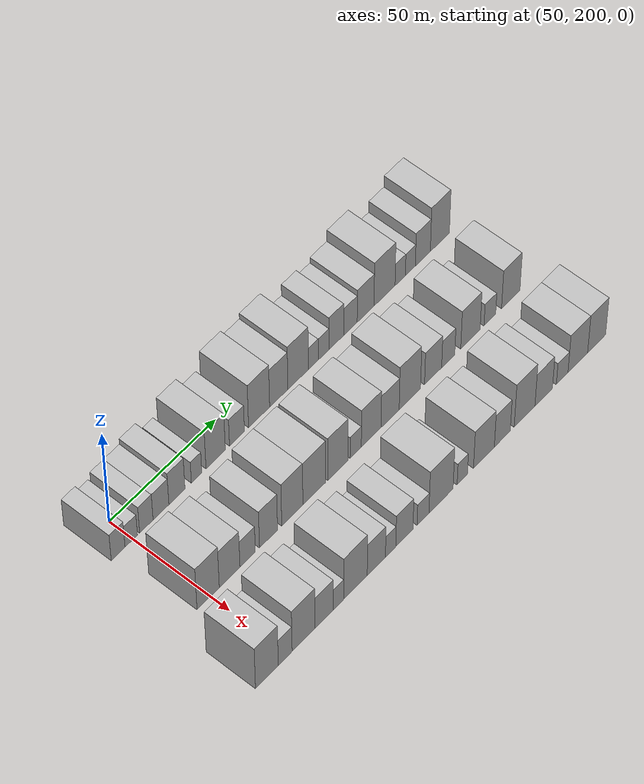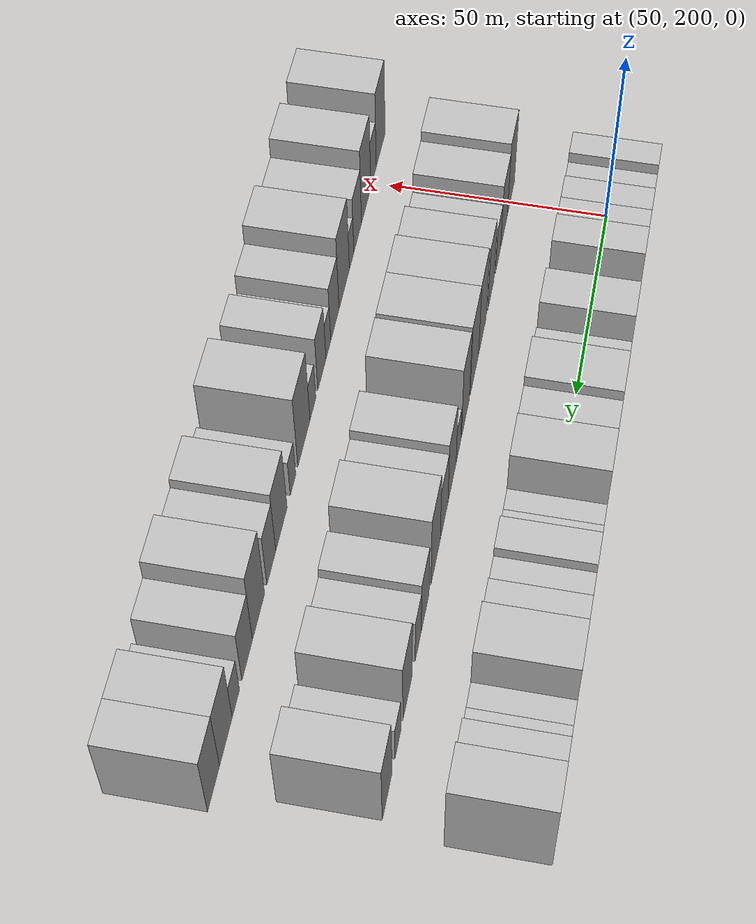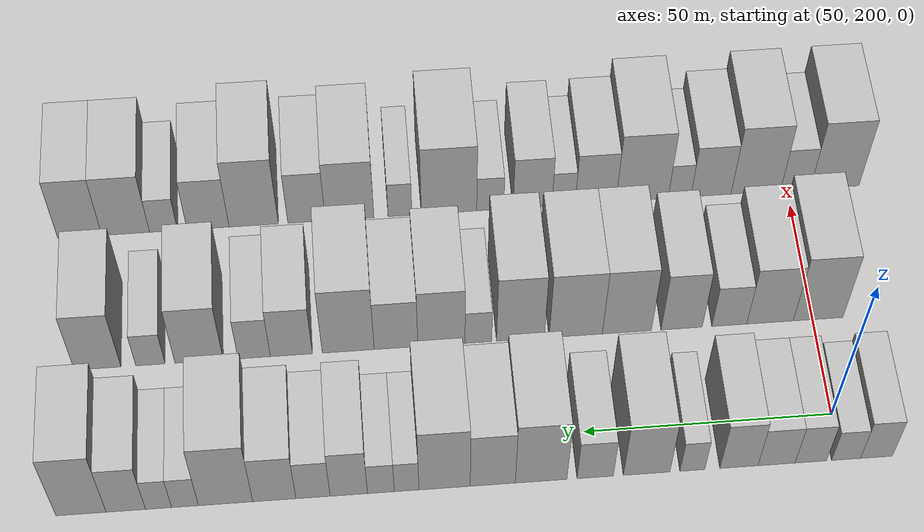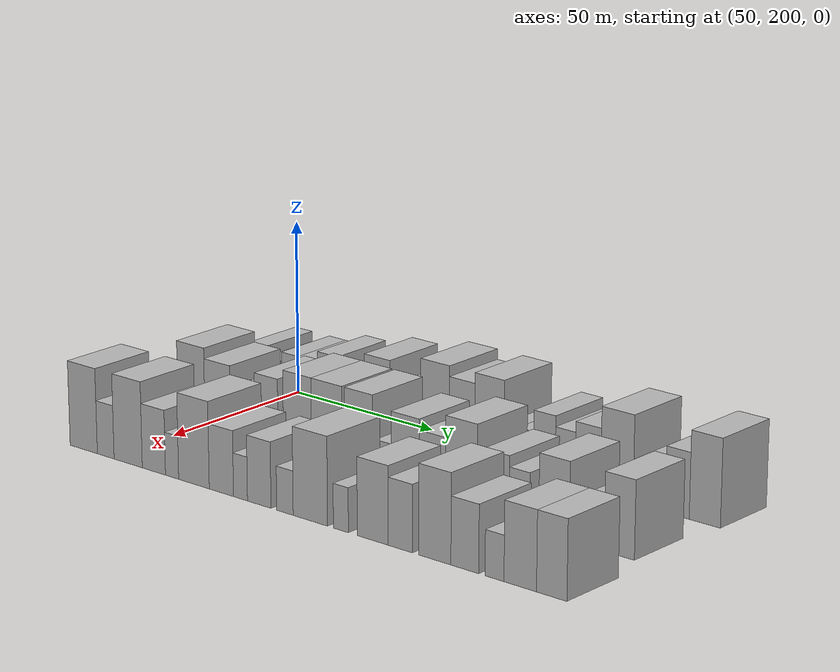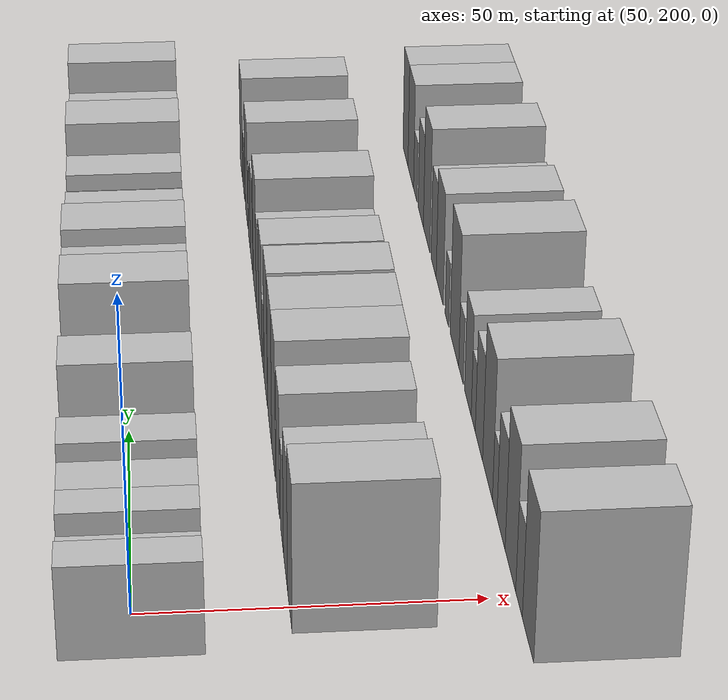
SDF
<sdf version="1.6">
 <world name="default">
  <model name="building_59">
   <static>1</static>
   <pose>50.0000 192.8500 0 0.000000 0.000000 0.000000</pose>
   <link name="link">
    <pose>0 0 7.50 0 0 0</pose>
    <collision name="collision"><geometry><box><size>20.0000 6.3850 15.0000</size></box></geometry></collision>
    <visual name="visual">
     <cast_shadows>0</cast_shadows>
     <geometry><box><size>20.0000 6.3850 15.0000</size></box></geometry>
     <material>
      <script>
       <uri>model://HANNAS_wall/materials/scripts</uri>
       <uri>model://HANNAS_wall/materials/textures</uri>
       <name>vrc/HANNAS_wall</name>
      </script>
     </material>
    </visual>
   </link>
  </model>
  <model name="building_60">
   <static>1</static>
   <pose>50.0000 198.9338 0 0.000000 0.000000 0.000000</pose>
   <link name="link">
    <pose>0 0 6.00 0 0 0</pose>
    <collision name="collision"><geometry><box><size>20.0000 5.7826 12.0000</size></box></geometry></collision>
    <visual name="visual">
     <cast_shadows>0</cast_shadows>
     <geometry><box><size>20.0000 5.7826 12.0000</size></box></geometry>
     <material>
      <script>
       <uri>model://HANNAS_wall/materials/scripts</uri>
       <uri>model://HANNAS_wall/materials/textures</uri>
       <name>vrc/HANNAS_wall</name>
      </script>
     </material>
    </visual>
   </link>
  </model>
  <model name="building_61">
   <static>1</static>
   <pose>50.0000 205.9676 0 0.000000 0.000000 0.000000</pose>
   <link name="link">
    <pose>0 0 7.50 0 0 0</pose>
    <collision name="collision"><geometry><box><size>20.0000 6.2850 15.0000</size></box></geometry></collision>
    <visual name="visual">
     <cast_shadows>0</cast_shadows>
     <geometry><box><size>20.0000 6.2850 15.0000</size></box></geometry>
     <material>
      <script>
       <uri>model://HANNAS_wall/materials/scripts</uri>
       <uri>model://HANNAS_wall/materials/textures</uri>
       <name>vrc/HANNAS_wall</name>
      </script>
     </material>
    </visual>
   </link>
  </model>
  <model name="building_62">
   <static>1</static>
   <pose>50.0000 212.8217 0 0.000000 0.000000 0.000000</pose>
   <link name="link">
    <pose>0 0 7.50 0 0 0</pose>
    <collision name="collision"><geometry><box><size>20.0000 7.4231 15.0000</size></box></geometry></collision>
    <visual name="visual">
     <cast_shadows>0</cast_shadows>
     <geometry><box><size>20.0000 7.4231 15.0000</size></box></geometry>
     <material>
      <script>
       <uri>model://HANNAS_wall/materials/scripts</uri>
       <uri>model://HANNAS_wall/materials/textures</uri>
       <name>vrc/HANNAS_wall</name>
      </script>
     </material>
    </visual>
   </link>
  </model>
  <model name="building_63">
   <static>1</static>
   <pose>50.0000 220.3268 0 0.000000 0.000000 0.000000</pose>
   <link name="link">
    <pose>0 0 9.00 0 0 0</pose>
    <collision name="collision"><geometry><box><size>20.0000 7.5871 18.0000</size></box></geometry></collision>
    <visual name="visual">
     <cast_shadows>0</cast_shadows>
     <geometry><box><size>20.0000 7.5871 18.0000</size></box></geometry>
     <material>
      <script>
       <uri>model://HANNAS_wall/materials/scripts</uri>
       <uri>model://HANNAS_wall/materials/textures</uri>
       <name>vrc/HANNAS_wall</name>
      </script>
     </material>
    </visual>
   </link>
  </model>
  <model name="building_64">
   <static>1</static>
   <pose>50.0000 229.5875 0 0.000000 0.000000 0.000000</pose>
   <link name="link">
    <pose>0 0 6.00 0 0 0</pose>
    <collision name="collision"><geometry><box><size>20.0000 4.9344 12.0000</size></box></geometry></collision>
    <visual name="visual">
     <cast_shadows>0</cast_shadows>
     <geometry><box><size>20.0000 4.9344 12.0000</size></box></geometry>
     <material>
      <script>
       <uri>model://HANNAS_wall/materials/scripts</uri>
       <uri>model://HANNAS_wall/materials/textures</uri>
       <name>vrc/HANNAS_wall</name>
      </script>
     </material>
    </visual>
   </link>
  </model>
  <model name="building_65">
   <static>1</static>
   <pose>50.0000 238.6654 0 0.000000 0.000000 0.000000</pose>
   <link name="link">
    <pose>0 0 10.50 0 0 0</pose>
    <collision name="collision"><geometry><box><size>20.0000 9.2213 21.0000</size></box></geometry></collision>
    <visual name="visual">
     <cast_shadows>0</cast_shadows>
     <geometry><box><size>20.0000 9.2213 21.0000</size></box></geometry>
     <material>
      <script>
       <uri>model://HANNAS_wall/materials/scripts</uri>
       <uri>model://HANNAS_wall/materials/textures</uri>
       <name>vrc/HANNAS_wall</name>
      </script>
     </material>
    </visual>
   </link>
  </model>
  <model name="building_66">
   <static>1</static>
   <pose>50.0000 248.8577 0 0.000000 0.000000 0.000000</pose>
   <link name="link">
    <pose>0 0 7.50 0 0 0</pose>
    <collision name="collision"><geometry><box><size>20.0000 7.1634 15.0000</size></box></geometry></collision>
    <visual name="visual">
     <cast_shadows>0</cast_shadows>
     <geometry><box><size>20.0000 7.1634 15.0000</size></box></geometry>
     <material>
      <script>
       <uri>model://HANNAS_wall/materials/scripts</uri>
       <uri>model://HANNAS_wall/materials/textures</uri>
       <name>vrc/HANNAS_wall</name>
      </script>
     </material>
    </visual>
   </link>
  </model>
  <model name="building_67">
   <static>1</static>
   <pose>50.0000 259.5342 0 0.000000 0.000000 0.000000</pose>
   <link name="link">
    <pose>0 0 12.00 0 0 0</pose>
    <collision name="collision"><geometry><box><size>20.0000 10.1897 24.0000</size></box></geometry></collision>
    <visual name="visual">
     <cast_shadows>0</cast_shadows>
     <geometry><box><size>20.0000 10.1897 24.0000</size></box></geometry>
     <material>
      <script>
       <uri>model://HANNAS_wall/materials/scripts</uri>
       <uri>model://HANNAS_wall/materials/textures</uri>
       <name>vrc/HANNAS_wall</name>
      </script>
     </material>
    </visual>
   </link>
  </model>
  <model name="building_68">
   <static>1</static>
   <pose>50.0000 269.0666 0 0.000000 0.000000 0.000000</pose>
   <link name="link">
    <pose>0 0 10.50 0 0 0</pose>
    <collision name="collision"><geometry><box><size>20.0000 8.8751 21.0000</size></box></geometry></collision>
    <visual name="visual">
     <cast_shadows>0</cast_shadows>
     <geometry><box><size>20.0000 8.8751 21.0000</size></box></geometry>
     <material>
      <script>
       <uri>model://HANNAS_wall/materials/scripts</uri>
       <uri>model://HANNAS_wall/materials/textures</uri>
       <name>vrc/HANNAS_wall</name>
      </script>
     </material>
    </visual>
   </link>
  </model>
  <model name="building_69">
   <static>1</static>
   <pose>50.0000 278.5439 0 0.000000 0.000000 0.000000</pose>
   <link name="link">
    <pose>0 0 12.00 0 0 0</pose>
    <collision name="collision"><geometry><box><size>20.0000 10.0796 24.0000</size></box></geometry></collision>
    <visual name="visual">
     <cast_shadows>0</cast_shadows>
     <geometry><box><size>20.0000 10.0796 24.0000</size></box></geometry>
     <material>
      <script>
       <uri>model://HANNAS_wall/materials/scripts</uri>
       <uri>model://HANNAS_wall/materials/textures</uri>
       <name>vrc/HANNAS_wall</name>
      </script>
     </material>
    </visual>
   </link>
  </model>
  <model name="building_70">
   <static>1</static>
   <pose>50.0000 286.0088 0 0.000000 0.000000 0.000000</pose>
   <link name="link">
    <pose>0 0 6.00 0 0 0</pose>
    <collision name="collision"><geometry><box><size>20.0000 4.8501 12.0000</size></box></geometry></collision>
    <visual name="visual">
     <cast_shadows>0</cast_shadows>
     <geometry><box><size>20.0000 4.8501 12.0000</size></box></geometry>
     <material>
      <script>
       <uri>model://HANNAS_wall/materials/scripts</uri>
       <uri>model://HANNAS_wall/materials/textures</uri>
       <name>vrc/HANNAS_wall</name>
      </script>
     </material>
    </visual>
   </link>
  </model>
  <model name="building_71">
   <static>1</static>
   <pose>50.0000 291.0631 0 0.000000 0.000000 0.000000</pose>
   <link name="link">
    <pose>0 0 6.00 0 0 0</pose>
    <collision name="collision"><geometry><box><size>20.0000 5.2586 12.0000</size></box></geometry></collision>
    <visual name="visual">
     <cast_shadows>0</cast_shadows>
     <geometry><box><size>20.0000 5.2586 12.0000</size></box></geometry>
     <material>
      <script>
       <uri>model://HANNAS_wall/materials/scripts</uri>
       <uri>model://HANNAS_wall/materials/textures</uri>
       <name>vrc/HANNAS_wall</name>
      </script>
     </material>
    </visual>
   </link>
  </model>
  <model name="building_72">
   <static>1</static>
   <pose>50.0000 297.3465 0 0.000000 0.000000 0.000000</pose>
   <link name="link">
    <pose>0 0 9.00 0 0 0</pose>
    <collision name="collision"><geometry><box><size>20.0000 7.3082 18.0000</size></box></geometry></collision>
    <visual name="visual">
     <cast_shadows>0</cast_shadows>
     <geometry><box><size>20.0000 7.3082 18.0000</size></box></geometry>
     <material>
      <script>
       <uri>model://HANNAS_wall/materials/scripts</uri>
       <uri>model://HANNAS_wall/materials/textures</uri>
       <name>vrc/HANNAS_wall</name>
      </script>
     </material>
    </visual>
   </link>
  </model>
  <model name="building_73">
   <static>1</static>
   <pose>50.0000 304.3476 0 0.000000 0.000000 0.000000</pose>
   <link name="link">
    <pose>0 0 7.50 0 0 0</pose>
    <collision name="collision"><geometry><box><size>20.0000 6.6939 15.0000</size></box></geometry></collision>
    <visual name="visual">
     <cast_shadows>0</cast_shadows>
     <geometry><box><size>20.0000 6.6939 15.0000</size></box></geometry>
     <material>
      <script>
       <uri>model://HANNAS_wall/materials/scripts</uri>
       <uri>model://HANNAS_wall/materials/textures</uri>
       <name>vrc/HANNAS_wall</name>
      </script>
     </material>
    </visual>
   </link>
  </model>
  <model name="building_74">
   <static>1</static>
   <pose>50.0000 311.9067 0 0.000000 0.000000 0.000000</pose>
   <link name="link">
    <pose>0 0 9.00 0 0 0</pose>
    <collision name="collision"><geometry><box><size>20.0000 8.4244 18.0000</size></box></geometry></collision>
    <visual name="visual">
     <cast_shadows>0</cast_shadows>
     <geometry><box><size>20.0000 8.4244 18.0000</size></box></geometry>
     <material>
      <script>
       <uri>model://HANNAS_wall/materials/scripts</uri>
       <uri>model://HANNAS_wall/materials/textures</uri>
       <name>vrc/HANNAS_wall</name>
      </script>
     </material>
    </visual>
   </link>
  </model>
  <model name="building_75">
   <static>1</static>
   <pose>50.0000 321.4114 0 0.000000 0.000000 0.000000</pose>
   <link name="link">
    <pose>0 0 12.00 0 0 0</pose>
    <collision name="collision"><geometry><box><size>20.0000 10.5850 24.0000</size></box></geometry></collision>
    <visual name="visual">
     <cast_shadows>0</cast_shadows>
     <geometry><box><size>20.0000 10.5850 24.0000</size></box></geometry>
     <material>
      <script>
       <uri>model://HANNAS_wall/materials/scripts</uri>
       <uri>model://HANNAS_wall/materials/textures</uri>
       <name>vrc/HANNAS_wall</name>
      </script>
     </material>
    </visual>
   </link>
  </model>
  <model name="building_76">
   <static>1</static>
   <pose>50.0000 329.3236 0 0.000000 0.000000 0.000000</pose>
   <link name="link">
    <pose>0 0 6.00 0 0 0</pose>
    <collision name="collision"><geometry><box><size>20.0000 5.2394 12.0000</size></box></geometry></collision>
    <visual name="visual">
     <cast_shadows>0</cast_shadows>
     <geometry><box><size>20.0000 5.2394 12.0000</size></box></geometry>
     <material>
      <script>
       <uri>model://HANNAS_wall/materials/scripts</uri>
       <uri>model://HANNAS_wall/materials/textures</uri>
       <name>vrc/HANNAS_wall</name>
      </script>
     </material>
    </visual>
   </link>
  </model>
  <model name="building_77">
   <static>1</static>
   <pose>50.0000 334.4714 0 0.000000 0.000000 0.000000</pose>
   <link name="link">
    <pose>0 0 6.00 0 0 0</pose>
    <collision name="collision"><geometry><box><size>20.0000 5.0562 12.0000</size></box></geometry></collision>
    <visual name="visual">
     <cast_shadows>0</cast_shadows>
     <geometry><box><size>20.0000 5.0562 12.0000</size></box></geometry>
     <material>
      <script>
       <uri>model://HANNAS_wall/materials/scripts</uri>
       <uri>model://HANNAS_wall/materials/textures</uri>
       <name>vrc/HANNAS_wall</name>
      </script>
     </material>
    </visual>
   </link>
  </model>
  <model name="building_78">
   <static>1</static>
   <pose>50.0000 340.8125 0 0.000000 0.000000 0.000000</pose>
   <link name="link">
    <pose>0 0 9.00 0 0 0</pose>
    <collision name="collision"><geometry><box><size>20.0000 7.6260 18.0000</size></box></geometry></collision>
    <visual name="visual">
     <cast_shadows>0</cast_shadows>
     <geometry><box><size>20.0000 7.6260 18.0000</size></box></geometry>
     <material>
      <script>
       <uri>model://HANNAS_wall/materials/scripts</uri>
       <uri>model://HANNAS_wall/materials/textures</uri>
       <name>vrc/HANNAS_wall</name>
      </script>
     </material>
    </visual>
   </link>
  </model>
  <model name="building_79">
   <static>1</static>
   <pose>50.0000 349.4919 0 0.000000 0.000000 0.000000</pose>
   <link name="link">
    <pose>0 0 12.00 0 0 0</pose>
    <collision name="collision"><geometry><box><size>20.0000 9.7329 24.0000</size></box></geometry></collision>
    <visual name="visual">
     <cast_shadows>0</cast_shadows>
     <geometry><box><size>20.0000 9.7329 24.0000</size></box></geometry>
     <material>
      <script>
       <uri>model://HANNAS_wall/materials/scripts</uri>
       <uri>model://HANNAS_wall/materials/textures</uri>
       <name>vrc/HANNAS_wall</name>
      </script>
     </material>
    </visual>
   </link>
  </model>
  <model name="building_136">
   <static>1</static>
   <pose>82.0000 198.8941 0 0.000000 0.000000 0.000000</pose>
   <link name="link">
    <pose>0 0 12.00 0 0 0</pose>
    <collision name="collision"><geometry><box><size>20.0000 10.3690 24.0000</size></box></geometry></collision>
    <visual name="visual">
     <cast_shadows>0</cast_shadows>
     <geometry><box><size>20.0000 10.3690 24.0000</size></box></geometry>
     <material>
      <script>
       <uri>model://HANNAS_wall/materials/scripts</uri>
       <uri>model://HANNAS_wall/materials/textures</uri>
       <name>vrc/HANNAS_wall</name>
      </script>
     </material>
    </visual>
   </link>
  </model>
  <model name="building_137">
   <static>1</static>
   <pose>82.0000 208.9224 0 0.000000 0.000000 0.000000</pose>
   <link name="link">
    <pose>0 0 10.50 0 0 0</pose>
    <collision name="collision"><geometry><box><size>20.0000 9.6878 21.0000</size></box></geometry></collision>
    <visual name="visual">
     <cast_shadows>0</cast_shadows>
     <geometry><box><size>20.0000 9.6878 21.0000</size></box></geometry>
     <material>
      <script>
       <uri>model://HANNAS_wall/materials/scripts</uri>
       <uri>model://HANNAS_wall/materials/textures</uri>
       <name>vrc/HANNAS_wall</name>
      </script>
     </material>
    </visual>
   </link>
  </model>
  <model name="building_138">
   <static>1</static>
   <pose>82.0000 217.3821 0 0.000000 0.000000 0.000000</pose>
   <link name="link">
    <pose>0 0 7.50 0 0 0</pose>
    <collision name="collision"><geometry><box><size>20.0000 7.2315 15.0000</size></box></geometry></collision>
    <visual name="visual">
     <cast_shadows>0</cast_shadows>
     <geometry><box><size>20.0000 7.2315 15.0000</size></box></geometry>
     <material>
      <script>
       <uri>model://HANNAS_wall/materials/scripts</uri>
       <uri>model://HANNAS_wall/materials/textures</uri>
       <name>vrc/HANNAS_wall</name>
      </script>
     </material>
    </visual>
   </link>
  </model>
  <model name="building_139">
   <static>1</static>
   <pose>82.0000 227.2700 0 0.000000 0.000000 0.000000</pose>
   <link name="link">
    <pose>0 0 10.50 0 0 0</pose>
    <collision name="collision"><geometry><box><size>20.0000 8.5444 21.0000</size></box></geometry></collision>
    <visual name="visual">
     <cast_shadows>0</cast_shadows>
     <geometry><box><size>20.0000 8.5444 21.0000</size></box></geometry>
     <material>
      <script>
       <uri>model://HANNAS_wall/materials/scripts</uri>
       <uri>model://HANNAS_wall/materials/textures</uri>
       <name>vrc/HANNAS_wall</name>
      </script>
     </material>
    </visual>
   </link>
  </model>
  <model name="building_140">
   <static>1</static>
   <pose>82.0000 238.6148 0 0.000000 0.000000 0.000000</pose>
   <link name="link">
    <pose>0 0 12.00 0 0 0</pose>
    <collision name="collision"><geometry><box><size>20.0000 10.1452 24.0000</size></box></geometry></collision>
    <visual name="visual">
     <cast_shadows>0</cast_shadows>
     <geometry><box><size>20.0000 10.1452 24.0000</size></box></geometry>
     <material>
      <script>
       <uri>model://HANNAS_wall/materials/scripts</uri>
       <uri>model://HANNAS_wall/materials/textures</uri>
       <name>vrc/HANNAS_wall</name>
      </script>
     </material>
    </visual>
   </link>
  </model>
  <model name="building_141">
   <static>1</static>
   <pose>82.0000 249.1798 0 0.000000 0.000000 0.000000</pose>
   <link name="link">
    <pose>0 0 12.00 0 0 0</pose>
    <collision name="collision"><geometry><box><size>20.0000 10.9849 24.0000</size></box></geometry></collision>
    <visual name="visual">
     <cast_shadows>0</cast_shadows>
     <geometry><box><size>20.0000 10.9849 24.0000</size></box></geometry>
     <material>
      <script>
       <uri>model://HANNAS_wall/materials/scripts</uri>
       <uri>model://HANNAS_wall/materials/textures</uri>
       <name>vrc/HANNAS_wall</name>
      </script>
     </material>
    </visual>
   </link>
  </model>
  <model name="building_142">
   <static>1</static>
   <pose>82.0000 260.5869 0 0.000000 0.000000 0.000000</pose>
   <link name="link">
    <pose>0 0 12.00 0 0 0</pose>
    <collision name="collision"><geometry><box><size>20.0000 9.8292 24.0000</size></box></geometry></collision>
    <visual name="visual">
     <cast_shadows>0</cast_shadows>
     <geometry><box><size>20.0000 9.8292 24.0000</size></box></geometry>
     <material>
      <script>
       <uri>model://HANNAS_wall/materials/scripts</uri>
       <uri>model://HANNAS_wall/materials/textures</uri>
       <name>vrc/HANNAS_wall</name>
      </script>
     </material>
    </visual>
   </link>
  </model>
  <model name="building_143">
   <static>1</static>
   <pose>82.0000 269.2338 0 0.000000 0.000000 0.000000</pose>
   <link name="link">
    <pose>0 0 6.00 0 0 0</pose>
    <collision name="collision"><geometry><box><size>20.0000 5.4647 12.0000</size></box></geometry></collision>
    <visual name="visual">
     <cast_shadows>0</cast_shadows>
     <geometry><box><size>20.0000 5.4647 12.0000</size></box></geometry>
     <material>
      <script>
       <uri>model://HANNAS_wall/materials/scripts</uri>
       <uri>model://HANNAS_wall/materials/textures</uri>
       <name>vrc/HANNAS_wall</name>
      </script>
     </material>
    </visual>
   </link>
  </model>
  <model name="building_144">
   <static>1</static>
   <pose>82.0000 276.8035 0 0.000000 0.000000 0.000000</pose>
   <link name="link">
    <pose>0 0 10.50 0 0 0</pose>
    <collision name="collision"><geometry><box><size>20.0000 9.6748 21.0000</size></box></geometry></collision>
    <visual name="visual">
     <cast_shadows>0</cast_shadows>
     <geometry><box><size>20.0000 9.6748 21.0000</size></box></geometry>
     <material>
      <script>
       <uri>model://HANNAS_wall/materials/scripts</uri>
       <uri>model://HANNAS_wall/materials/textures</uri>
       <name>vrc/HANNAS_wall</name>
      </script>
     </material>
    </visual>
   </link>
  </model>
  <model name="building_145">
   <static>1</static>
   <pose>82.0000 286.1169 0 0.000000 0.000000 0.000000</pose>
   <link name="link">
    <pose>0 0 9.00 0 0 0</pose>
    <collision name="collision"><geometry><box><size>20.0000 8.9520 18.0000</size></box></geometry></collision>
    <visual name="visual">
     <cast_shadows>0</cast_shadows>
     <geometry><box><size>20.0000 8.9520 18.0000</size></box></geometry>
     <material>
      <script>
       <uri>model://HANNAS_wall/materials/scripts</uri>
       <uri>model://HANNAS_wall/materials/textures</uri>
       <name>vrc/HANNAS_wall</name>
      </script>
     </material>
    </visual>
   </link>
  </model>
  <model name="building_146">
   <static>1</static>
   <pose>82.0000 295.9011 0 0.000000 0.000000 0.000000</pose>
   <link name="link">
    <pose>0 0 12.00 0 0 0</pose>
    <collision name="collision"><geometry><box><size>20.0000 10.6165 24.0000</size></box></geometry></collision>
    <visual name="visual">
     <cast_shadows>0</cast_shadows>
     <geometry><box><size>20.0000 10.6165 24.0000</size></box></geometry>
     <material>
      <script>
       <uri>model://HANNAS_wall/materials/scripts</uri>
       <uri>model://HANNAS_wall/materials/textures</uri>
       <name>vrc/HANNAS_wall</name>
      </script>
     </material>
    </visual>
   </link>
  </model>
  <model name="building_147">
   <static>1</static>
   <pose>82.0000 307.4926 0 0.000000 0.000000 0.000000</pose>
   <link name="link">
    <pose>0 0 9.00 0 0 0</pose>
    <collision name="collision"><geometry><box><size>20.0000 8.5664 18.0000</size></box></geometry></collision>
    <visual name="visual">
     <cast_shadows>0</cast_shadows>
     <geometry><box><size>20.0000 8.5664 18.0000</size></box></geometry>
     <material>
      <script>
       <uri>model://HANNAS_wall/materials/scripts</uri>
       <uri>model://HANNAS_wall/materials/textures</uri>
       <name>vrc/HANNAS_wall</name>
      </script>
     </material>
    </visual>
   </link>
  </model>
  <model name="building_148">
   <static>1</static>
   <pose>82.0000 315.0763 0 0.000000 0.000000 0.000000</pose>
   <link name="link">
    <pose>0 0 7.50 0 0 0</pose>
    <collision name="collision"><geometry><box><size>20.0000 6.6009 15.0000</size></box></geometry></collision>
    <visual name="visual">
     <cast_shadows>0</cast_shadows>
     <geometry><box><size>20.0000 6.6009 15.0000</size></box></geometry>
     <material>
      <script>
       <uri>model://HANNAS_wall/materials/scripts</uri>
       <uri>model://HANNAS_wall/materials/textures</uri>
       <name>vrc/HANNAS_wall</name>
      </script>
     </material>
    </visual>
   </link>
  </model>
  <model name="building_149">
   <static>1</static>
   <pose>82.0000 326.2870 0 0.000000 0.000000 0.000000</pose>
   <link name="link">
    <pose>0 0 10.50 0 0 0</pose>
    <collision name="collision"><geometry><box><size>20.0000 9.8205 21.0000</size></box></geometry></collision>
    <visual name="visual">
     <cast_shadows>0</cast_shadows>
     <geometry><box><size>20.0000 9.8205 21.0000</size></box></geometry>
     <material>
      <script>
       <uri>model://HANNAS_wall/materials/scripts</uri>
       <uri>model://HANNAS_wall/materials/textures</uri>
       <name>vrc/HANNAS_wall</name>
      </script>
     </material>
    </visual>
   </link>
  </model>
  <model name="building_150">
   <static>1</static>
   <pose>82.0000 336.1662 0 0.000000 0.000000 0.000000</pose>
   <link name="link">
    <pose>0 0 6.00 0 0 0</pose>
    <collision name="collision"><geometry><box><size>20.0000 5.9378 12.0000</size></box></geometry></collision>
    <visual name="visual">
     <cast_shadows>0</cast_shadows>
     <geometry><box><size>20.0000 5.9378 12.0000</size></box></geometry>
     <material>
      <script>
       <uri>model://HANNAS_wall/materials/scripts</uri>
       <uri>model://HANNAS_wall/materials/textures</uri>
       <name>vrc/HANNAS_wall</name>
      </script>
     </material>
    </visual>
   </link>
  </model>
  <model name="building_151">
   <static>1</static>
   <pose>82.0000 346.8562 0 0.000000 0.000000 0.000000</pose>
   <link name="link">
    <pose>0 0 10.50 0 0 0</pose>
    <collision name="collision"><geometry><box><size>20.0000 9.4422 21.0000</size></box></geometry></collision>
    <visual name="visual">
     <cast_shadows>0</cast_shadows>
     <geometry><box><size>20.0000 9.4422 21.0000</size></box></geometry>
     <material>
      <script>
       <uri>model://HANNAS_wall/materials/scripts</uri>
       <uri>model://HANNAS_wall/materials/textures</uri>
       <name>vrc/HANNAS_wall</name>
      </script>
     </material>
    </visual>
   </link>
  </model>
  <model name="building_206">
   <static>1</static>
   <pose>114.0000 189.7043 0 0.000000 0.000000 0.000000</pose>
   <link name="link">
    <pose>0 0 12.00 0 0 0</pose>
    <collision name="collision"><geometry><box><size>20.0000 10.6008 24.0000</size></box></geometry></collision>
    <visual name="visual">
     <cast_shadows>0</cast_shadows>
     <geometry><box><size>20.0000 10.6008 24.0000</size></box></geometry>
     <material>
      <script>
       <uri>model://HANNAS_wall/materials/scripts</uri>
       <uri>model://HANNAS_wall/materials/textures</uri>
       <name>vrc/HANNAS_wall</name>
      </script>
     </material>
    </visual>
   </link>
  </model>
  <model name="building_207">
   <static>1</static>
   <pose>114.0000 198.2244 0 0.000000 0.000000 0.000000</pose>
   <link name="link">
    <pose>0 0 7.50 0 0 0</pose>
    <collision name="collision"><geometry><box><size>20.0000 6.4396 15.0000</size></box></geometry></collision>
    <visual name="visual">
     <cast_shadows>0</cast_shadows>
     <geometry><box><size>20.0000 6.4396 15.0000</size></box></geometry>
     <material>
      <script>
       <uri>model://HANNAS_wall/materials/scripts</uri>
       <uri>model://HANNAS_wall/materials/textures</uri>
       <name>vrc/HANNAS_wall</name>
      </script>
     </material>
    </visual>
   </link>
  </model>
  <model name="building_208">
   <static>1</static>
   <pose>114.0000 206.8115 0 0.000000 0.000000 0.000000</pose>
   <link name="link">
    <pose>0 0 12.00 0 0 0</pose>
    <collision name="collision"><geometry><box><size>20.0000 10.7345 24.0000</size></box></geometry></collision>
    <visual name="visual">
     <cast_shadows>0</cast_shadows>
     <geometry><box><size>20.0000 10.7345 24.0000</size></box></geometry>
     <material>
      <script>
       <uri>model://HANNAS_wall/materials/scripts</uri>
       <uri>model://HANNAS_wall/materials/textures</uri>
       <name>vrc/HANNAS_wall</name>
      </script>
     </material>
    </visual>
   </link>
  </model>
  <model name="building_209">
   <static>1</static>
   <pose>114.0000 216.5246 0 0.000000 0.000000 0.000000</pose>
   <link name="link">
    <pose>0 0 9.00 0 0 0</pose>
    <collision name="collision"><geometry><box><size>20.0000 8.6918 18.0000</size></box></geometry></collision>
    <visual name="visual">
     <cast_shadows>0</cast_shadows>
     <geometry><box><size>20.0000 8.6918 18.0000</size></box></geometry>
     <material>
      <script>
       <uri>model://HANNAS_wall/materials/scripts</uri>
       <uri>model://HANNAS_wall/materials/textures</uri>
       <name>vrc/HANNAS_wall</name>
      </script>
     </material>
    </visual>
   </link>
  </model>
  <model name="building_210">
   <static>1</static>
   <pose>114.0000 223.3165 0 0.000000 0.000000 0.000000</pose>
   <link name="link">
    <pose>0 0 6.00 0 0 0</pose>
    <collision name="collision"><geometry><box><size>20.0000 4.8919 12.0000</size></box></geometry></collision>
    <visual name="visual">
     <cast_shadows>0</cast_shadows>
     <geometry><box><size>20.0000 4.8919 12.0000</size></box></geometry>
     <material>
      <script>
       <uri>model://HANNAS_wall/materials/scripts</uri>
       <uri>model://HANNAS_wall/materials/textures</uri>
       <name>vrc/HANNAS_wall</name>
      </script>
     </material>
    </visual>
   </link>
  </model>
  <model name="building_211">
   <static>1</static>
   <pose>114.0000 231.3942 0 0.000000 0.000000 0.000000</pose>
   <link name="link">
    <pose>0 0 12.00 0 0 0</pose>
    <collision name="collision"><geometry><box><size>20.0000 11.2636 24.0000</size></box></geometry></collision>
    <visual name="visual">
     <cast_shadows>0</cast_shadows>
     <geometry><box><size>20.0000 11.2636 24.0000</size></box></geometry>
     <material>
      <script>
       <uri>model://HANNAS_wall/materials/scripts</uri>
       <uri>model://HANNAS_wall/materials/textures</uri>
       <name>vrc/HANNAS_wall</name>
      </script>
     </material>
    </visual>
   </link>
  </model>
  <model name="building_212">
   <static>1</static>
   <pose>114.0000 241.4114 0 0.000000 0.000000 0.000000</pose>
   <link name="link">
    <pose>0 0 9.00 0 0 0</pose>
    <collision name="collision"><geometry><box><size>20.0000 8.7707 18.0000</size></box></geometry></collision>
    <visual name="visual">
     <cast_shadows>0</cast_shadows>
     <geometry><box><size>20.0000 8.7707 18.0000</size></box></geometry>
     <material>
      <script>
       <uri>model://HANNAS_wall/materials/scripts</uri>
       <uri>model://HANNAS_wall/materials/textures</uri>
       <name>vrc/HANNAS_wall</name>
      </script>
     </material>
    </visual>
   </link>
  </model>
  <model name="building_213">
   <static>1</static>
   <pose>114.0000 248.2952 0 0.000000 0.000000 0.000000</pose>
   <link name="link">
    <pose>0 0 6.00 0 0 0</pose>
    <collision name="collision"><geometry><box><size>20.0000 4.9968 12.0000</size></box></geometry></collision>
    <visual name="visual">
     <cast_shadows>0</cast_shadows>
     <geometry><box><size>20.0000 4.9968 12.0000</size></box></geometry>
     <material>
      <script>
       <uri>model://HANNAS_wall/materials/scripts</uri>
       <uri>model://HANNAS_wall/materials/textures</uri>
       <name>vrc/HANNAS_wall</name>
      </script>
     </material>
    </visual>
   </link>
  </model>
  <model name="building_214">
   <static>1</static>
   <pose>114.0000 254.9642 0 0.000000 0.000000 0.000000</pose>
   <link name="link">
    <pose>0 0 9.00 0 0 0</pose>
    <collision name="collision"><geometry><box><size>20.0000 8.3412 18.0000</size></box></geometry></collision>
    <visual name="visual">
     <cast_shadows>0</cast_shadows>
     <geometry><box><size>20.0000 8.3412 18.0000</size></box></geometry>
     <material>
      <script>
       <uri>model://HANNAS_wall/materials/scripts</uri>
       <uri>model://HANNAS_wall/materials/textures</uri>
       <name>vrc/HANNAS_wall</name>
      </script>
     </material>
    </visual>
   </link>
  </model>
  <model name="building_215">
   <static>1</static>
   <pose>114.0000 264.0211 0 0.000000 0.000000 0.000000</pose>
   <link name="link">
    <pose>0 0 6.00 0 0 0</pose>
    <collision name="collision"><geometry><box><size>20.0000 5.7726 12.0000</size></box></geometry></collision>
    <visual name="visual">
     <cast_shadows>0</cast_shadows>
     <geometry><box><size>20.0000 5.7726 12.0000</size></box></geometry>
     <material>
      <script>
       <uri>model://HANNAS_wall/materials/scripts</uri>
       <uri>model://HANNAS_wall/materials/textures</uri>
       <name>vrc/HANNAS_wall</name>
      </script>
     </material>
    </visual>
   </link>
  </model>
  <model name="building_216">
   <static>1</static>
   <pose>114.0000 272.8344 0 0.000000 0.000000 0.000000</pose>
   <link name="link">
    <pose>0 0 12.00 0 0 0</pose>
    <collision name="collision"><geometry><box><size>20.0000 11.8541 24.0000</size></box></geometry></collision>
    <visual name="visual">
     <cast_shadows>0</cast_shadows>
     <geometry><box><size>20.0000 11.8541 24.0000</size></box></geometry>
     <material>
      <script>
       <uri>model://HANNAS_wall/materials/scripts</uri>
       <uri>model://HANNAS_wall/materials/textures</uri>
       <name>vrc/HANNAS_wall</name>
      </script>
     </material>
    </visual>
   </link>
  </model>
  <model name="building_217">
   <static>1</static>
   <pose>114.0000 283.3112 0 0.000000 0.000000 0.000000</pose>
   <link name="link">
    <pose>0 0 6.00 0 0 0</pose>
    <collision name="collision"><geometry><box><size>20.0000 5.0994 12.0000</size></box></geometry></collision>
    <visual name="visual">
     <cast_shadows>0</cast_shadows>
     <geometry><box><size>20.0000 5.0994 12.0000</size></box></geometry>
     <material>
      <script>
       <uri>model://HANNAS_wall/materials/scripts</uri>
       <uri>model://HANNAS_wall/materials/textures</uri>
       <name>vrc/HANNAS_wall</name>
      </script>
     </material>
    </visual>
   </link>
  </model>
  <model name="building_218">
   <static>1</static>
   <pose>114.0000 294.0499 0 0.000000 0.000000 0.000000</pose>
   <link name="link">
    <pose>0 0 10.50 0 0 0</pose>
    <collision name="collision"><geometry><box><size>20.0000 10.3780 21.0000</size></box></geometry></collision>
    <visual name="visual">
     <cast_shadows>0</cast_shadows>
     <geometry><box><size>20.0000 10.3780 21.0000</size></box></geometry>
     <material>
      <script>
       <uri>model://HANNAS_wall/materials/scripts</uri>
       <uri>model://HANNAS_wall/materials/textures</uri>
       <name>vrc/HANNAS_wall</name>
      </script>
     </material>
    </visual>
   </link>
  </model>
  <model name="building_219">
   <static>1</static>
   <pose>114.0000 303.2177 0 0.000000 0.000000 0.000000</pose>
   <link name="link">
    <pose>0 0 9.00 0 0 0</pose>
    <collision name="collision"><geometry><box><size>20.0000 7.9575 18.0000</size></box></geometry></collision>
    <visual name="visual">
     <cast_shadows>0</cast_shadows>
     <geometry><box><size>20.0000 7.9575 18.0000</size></box></geometry>
     <material>
      <script>
       <uri>model://HANNAS_wall/materials/scripts</uri>
       <uri>model://HANNAS_wall/materials/textures</uri>
       <name>vrc/HANNAS_wall</name>
      </script>
     </material>
    </visual>
   </link>
  </model>
  <model name="building_220">
   <static>1</static>
   <pose>114.0000 314.4315 0 0.000000 0.000000 0.000000</pose>
   <link name="link">
    <pose>0 0 12.00 0 0 0</pose>
    <collision name="collision"><geometry><box><size>20.0000 10.4700 24.0000</size></box></geometry></collision>
    <visual name="visual">
     <cast_shadows>0</cast_shadows>
     <geometry><box><size>20.0000 10.4700 24.0000</size></box></geometry>
     <material>
      <script>
       <uri>model://HANNAS_wall/materials/scripts</uri>
       <uri>model://HANNAS_wall/materials/textures</uri>
       <name>vrc/HANNAS_wall</name>
      </script>
     </material>
    </visual>
   </link>
  </model>
  <model name="building_221">
   <static>1</static>
   <pose>114.0000 324.1157 0 0.000000 0.000000 0.000000</pose>
   <link name="link">
    <pose>0 0 9.00 0 0 0</pose>
    <collision name="collision"><geometry><box><size>20.0000 8.8985 18.0000</size></box></geometry></collision>
    <visual name="visual">
     <cast_shadows>0</cast_shadows>
     <geometry><box><size>20.0000 8.8985 18.0000</size></box></geometry>
     <material>
      <script>
       <uri>model://HANNAS_wall/materials/scripts</uri>
       <uri>model://HANNAS_wall/materials/textures</uri>
       <name>vrc/HANNAS_wall</name>
      </script>
     </material>
    </visual>
   </link>
  </model>
  <model name="building_222">
   <static>1</static>
   <pose>114.0000 333.5293 0 0.000000 0.000000 0.000000</pose>
   <link name="link">
    <pose>0 0 6.00 0 0 0</pose>
    <collision name="collision"><geometry><box><size>20.0000 5.9288 12.0000</size></box></geometry></collision>
    <visual name="visual">
     <cast_shadows>0</cast_shadows>
     <geometry><box><size>20.0000 5.9288 12.0000</size></box></geometry>
     <material>
      <script>
       <uri>model://HANNAS_wall/materials/scripts</uri>
       <uri>model://HANNAS_wall/materials/textures</uri>
       <name>vrc/HANNAS_wall</name>
      </script>
     </material>
    </visual>
   </link>
  </model>
  <model name="building_223">
   <static>1</static>
   <pose>114.0000 341.5367 0 0.000000 0.000000 0.000000</pose>
   <link name="link">
    <pose>0 0 10.50 0 0 0</pose>
    <collision name="collision"><geometry><box><size>20.0000 10.0859 21.0000</size></box></geometry></collision>
    <visual name="visual">
     <cast_shadows>0</cast_shadows>
     <geometry><box><size>20.0000 10.0859 21.0000</size></box></geometry>
     <material>
      <script>
       <uri>model://HANNAS_wall/materials/scripts</uri>
       <uri>model://HANNAS_wall/materials/textures</uri>
       <name>vrc/HANNAS_wall</name>
      </script>
     </material>
    </visual>
   </link>
  </model>
  <model name="building_224">
   <static>1</static>
   <pose>114.0000 351.2242 0 0.000000 0.000000 0.000000</pose>
   <link name="link">
    <pose>0 0 10.50 0 0 0</pose>
    <collision name="collision"><geometry><box><size>20.0000 9.2892 21.0000</size></box></geometry></collision>
    <visual name="visual">
     <cast_shadows>0</cast_shadows>
     <geometry><box><size>20.0000 9.2892 21.0000</size></box></geometry>
     <material>
      <script>
       <uri>model://HANNAS_wall/materials/scripts</uri>
       <uri>model://HANNAS_wall/materials/textures</uri>
       <name>vrc/HANNAS_wall</name>
      </script>
     </material>
    </visual>
   </link>
  </model>
 </world>
</sdf>
